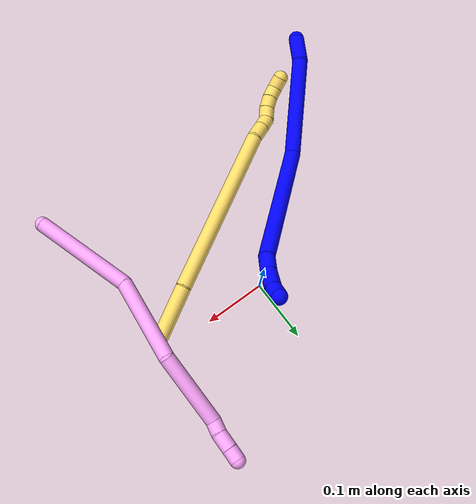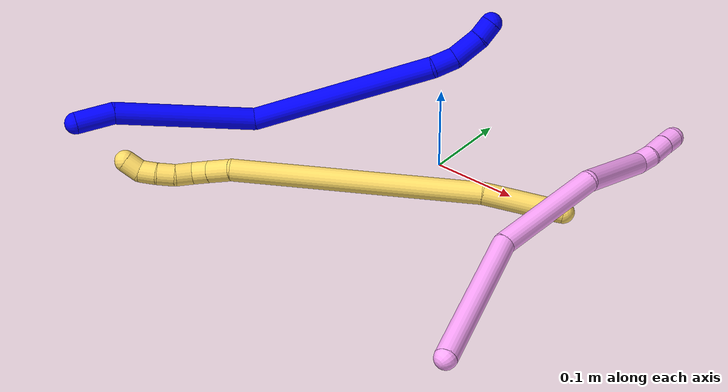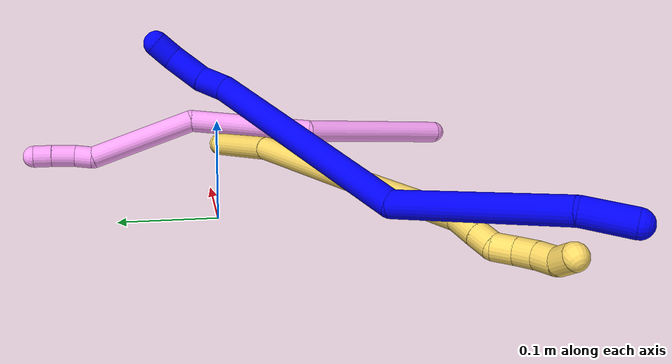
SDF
<sdf version="1.7">
 <world name="default">
  <model name="photoneo_s_sensor">
   <static>1</static>
   <pose>0 0 2 1.57079 1.57079 3.14159</pose>
   <link name="link">
    <inertial><mass>0.1</mass></inertial>
    <sensor name="sensor" type="depth">
     <update_rate>30</update_rate>
     <camera>
      <horizontal_fov>1.22</horizontal_fov>
      <image><width>1920</width><height>1200</height><format>B8G8R8</format></image>
      <clip><near>0.1</near><far>4</far></clip>
      <depth_camera><output>points</output></depth_camera>
     </camera>
     <plugin name="camera_plugin" filename="libgazebo_ros_depth_camera.so">
      <baseline>0.2</baseline>
      <alwaysOn>1</alwaysOn>
      <updateRate>0.0</updateRate>
      <cameraName>camera_ir</cameraName>
      <imageTopicName>/camera/color/image_raw</imageTopicName>
      <cameraInfoTopicName>/camera/color/camera_info</cameraInfoTopicName>
      <depthImageTopicName>/camera/depth/image_raw</depthImageTopicName>
      <depthImageCameraInfoTopicName>/camera/depth/camera_info</depthImageCameraInfoTopicName>
      <pointCloudTopicName>/camera/depth/points</pointCloudTopicName>
      <frameName>fr_optical</frameName>
      <pointCloudCutoff>0.1</pointCloudCutoff>
      <pointCloudCutoffMax>2.0</pointCloudCutoffMax>
      <distortionK1>0</distortionK1>
      <distortionK2>0</distortionK2>
      <distortionK3>0</distortionK3>
      <distortionT1>0</distortionT1>
      <distortionT2>0</distortionT2>
      <CxPrime>0</CxPrime>
      <Cx>0</Cx>
      <Cy>0</Cy>
      <focalLength>0</focalLength>
      <hackBaseline>0</hackBaseline>
     </plugin>
    </sensor>
   </link>
  </model>
  <model name="1">
   <static>0</static>
   <link name="1">
    <collision name="collision-cylinder-e_1_1_4">
     <pose>2e-05 0.000368 0.022012 -0.016731 0.000888 -7e-06</pose>
     <geometry><cylinder><radius>0.0125</radius><length>0.04403</length></cylinder></geometry>
     <surface>
      <friction><ode><mu>1.16</mu><mu2>1.16</mu2><slip1>0</slip1><slip2>0</slip2></ode></friction>
      <contact><ode><kp>1e+06</kp><kd>1</kd><max_vel>0</max_vel><min_depth>0.001</min_depth></ode></contact>
     </surface>
    </collision>
    <visual name="visual-cylinder-e_1_1_4">
     <pose>2e-05 0.000368 0.022012 -0.016731 0.000888 -7e-06</pose>
     <geometry><cylinder><radius>0.0125</radius><length>0.04403</length></cylinder></geometry>
     <material><ambient>0 0 1 1</ambient></material>
    </visual>
    <collision name="collision-cylinder-e_2_4_5">
     <pose>-0.023304 -0.002079 0.120374 0.036866 -0.296524 -0.005507</pose>
     <geometry><cylinder><radius>0.0125</radius><length>0.159778</length></cylinder></geometry>
     <surface>
      <friction><ode><mu>1.16</mu><mu2>1.16</mu2><slip1>0</slip1><slip2>0</slip2></ode></friction>
      <contact><ode><kp>1e+06</kp><kd>1</kd><max_vel>0</max_vel><min_depth>0.001</min_depth></ode></contact>
     </surface>
    </collision>
    <visual name="visual-cylinder-e_2_4_5">
     <pose>-0.023304 -0.002079 0.120374 0.036866 -0.296524 -0.005507</pose>
     <geometry><cylinder><radius>0.0125</radius><length>0.159778</length></cylinder></geometry>
     <material><ambient>0 0 1 1</ambient></material>
    </visual>
    <collision name="collision-cylinder-e_3_5_6">
     <pose>-0.054449 0.040064 0.293041 -0.43673 -0.07326 0.016264</pose>
     <geometry><cylinder><radius>0.0125</radius><length>0.213158</length></cylinder></geometry>
     <surface>
      <friction><ode><mu>1.16</mu><mu2>1.16</mu2><slip1>0</slip1><slip2>0</slip2></ode></friction>
      <contact><ode><kp>1e+06</kp><kd>1</kd><max_vel>0</max_vel><min_depth>0.001</min_depth></ode></contact>
     </surface>
    </collision>
    <visual name="visual-cylinder-e_3_5_6">
     <pose>-0.054449 0.040064 0.293041 -0.43673 -0.07326 0.016264</pose>
     <geometry><cylinder><radius>0.0125</radius><length>0.213158</length></cylinder></geometry>
     <material><ambient>0 0 1 1</ambient></material>
    </visual>
    <collision name="collision-cylinder-e_4_6_7">
     <pose>-0.060797 0.087384 0.402421 -0.178726 0.108998 -0.009776</pose>
     <geometry><cylinder><radius>0.0125</radius><length>0.02671</length></cylinder></geometry>
     <surface>
      <friction><ode><mu>1.16</mu><mu2>1.16</mu2><slip1>0</slip1><slip2>0</slip2></ode></friction>
      <contact><ode><kp>1e+06</kp><kd>1</kd><max_vel>0</max_vel><min_depth>0.001</min_depth></ode></contact>
     </surface>
    </collision>
    <visual name="visual-cylinder-e_4_6_7">
     <pose>-0.060797 0.087384 0.402421 -0.178726 0.108998 -0.009776</pose>
     <geometry><cylinder><radius>0.0125</radius><length>0.02671</length></cylinder></geometry>
     <material><ambient>0 0 1 1</ambient></material>
    </visual>
    <collision name="collision-cylinder-e_5_7_8">
     <pose>-0.053374 0.095472 0.430909 -0.355575 0.348083 -0.063163</pose>
     <geometry><cylinder><radius>0.0125</radius><length>0.035004</length></cylinder></geometry>
     <surface>
      <friction><ode><mu>1.16</mu><mu2>1.16</mu2><slip1>0</slip1><slip2>0</slip2></ode></friction>
      <contact><ode><kp>1e+06</kp><kd>1</kd><max_vel>0</max_vel><min_depth>0.001</min_depth></ode></contact>
     </surface>
    </collision>
    <visual name="visual-cylinder-e_5_7_8">
     <pose>-0.053374 0.095472 0.430909 -0.355575 0.348083 -0.063163</pose>
     <geometry><cylinder><radius>0.0125</radius><length>0.035004</length></cylinder></geometry>
     <material><ambient>0 0 1 1</ambient></material>
    </visual>
    <collision name="collision-cylinder-e_6_8_2">
     <pose>-0.041522 0.10431 0.454661 -0.357487 0.584504 -0.10861</pose>
     <geometry><cylinder><radius>0.0125</radius><length>0.021321</length></cylinder></geometry>
     <surface>
      <friction><ode><mu>1.16</mu><mu2>1.16</mu2><slip1>0</slip1><slip2>0</slip2></ode></friction>
      <contact><ode><kp>1e+06</kp><kd>1</kd><max_vel>0</max_vel><min_depth>0.001</min_depth></ode></contact>
     </surface>
    </collision>
    <visual name="visual-cylinder-e_6_8_2">
     <pose>-0.041522 0.10431 0.454661 -0.357487 0.584504 -0.10861</pose>
     <geometry><cylinder><radius>0.0125</radius><length>0.021321</length></cylinder></geometry>
     <material><ambient>0 0 1 1</ambient></material>
    </visual>
    <collision name="collision-sphere-2">
     <pose>-0.03564 0.107421 0.462989 0 -0 0</pose>
     <geometry><sphere><radius>0.0125</radius></sphere></geometry>
     <surface>
      <friction><ode><mu>1.16</mu><mu2>1.16</mu2><slip1>0</slip1><slip2>0</slip2></ode></friction>
      <contact><ode><kp>1e+06</kp><kd>1</kd><max_vel>0</max_vel><min_depth>0.001</min_depth></ode></contact>
     </surface>
    </collision>
    <visual name="visual-sphere-2">
     <pose>-0.03564 0.107421 0.462989 0 -0 0</pose>
     <geometry><sphere><radius>0.0125</radius></sphere></geometry>
     <material><ambient>0 0 1 1</ambient></material>
    </visual>
    <collision name="collision-sphere-4">
     <pose>3.9e-05 0.000737 0.044023 0 -0 0</pose>
     <geometry><sphere><radius>0.0125</radius></sphere></geometry>
     <surface>
      <friction><ode><mu>1.16</mu><mu2>1.16</mu2><slip1>0</slip1><slip2>0</slip2></ode></friction>
      <contact><ode><kp>1e+06</kp><kd>1</kd><max_vel>0</max_vel><min_depth>0.001</min_depth></ode></contact>
     </surface>
    </collision>
    <visual name="visual-sphere-4">
     <pose>3.9e-05 0.000737 0.044023 0 -0 0</pose>
     <geometry><sphere><radius>0.0125</radius></sphere></geometry>
     <material><ambient>0 0 1 1</ambient></material>
    </visual>
    <collision name="collision-sphere-1">
     <geometry><sphere><radius>0.0125</radius></sphere></geometry>
     <surface>
      <friction><ode><mu>1.16</mu><mu2>1.16</mu2><slip1>0</slip1><slip2>0</slip2></ode></friction>
      <contact><ode><kp>1e+06</kp><kd>1</kd><max_vel>0</max_vel><min_depth>0.001</min_depth></ode></contact>
     </surface>
    </collision>
    <visual name="visual-sphere-1">
     <geometry><sphere><radius>0.0125</radius></sphere></geometry>
     <material><ambient>0 0 1 1</ambient></material>
    </visual>
    <collision name="collision-sphere-8">
     <pose>-0.047404 0.101199 0.446332 0 -0 0</pose>
     <geometry><sphere><radius>0.0125</radius></sphere></geometry>
     <surface>
      <friction><ode><mu>1.16</mu><mu2>1.16</mu2><slip1>0</slip1><slip2>0</slip2></ode></friction>
      <contact><ode><kp>1e+06</kp><kd>1</kd><max_vel>0</max_vel><min_depth>0.001</min_depth></ode></contact>
     </surface>
    </collision>
    <visual name="visual-sphere-8">
     <pose>-0.047404 0.101199 0.446332 0 -0 0</pose>
     <geometry><sphere><radius>0.0125</radius></sphere></geometry>
     <material><ambient>0 0 1 1</ambient></material>
    </visual>
    <collision name="collision-sphere-5">
     <pose>-0.046648 -0.004895 0.196724 0 -0 0</pose>
     <geometry><sphere><radius>0.0125</radius></sphere></geometry>
     <surface>
      <friction><ode><mu>1.16</mu><mu2>1.16</mu2><slip1>0</slip1><slip2>0</slip2></ode></friction>
      <contact><ode><kp>1e+06</kp><kd>1</kd><max_vel>0</max_vel><min_depth>0.001</min_depth></ode></contact>
     </surface>
    </collision>
    <visual name="visual-sphere-5">
     <pose>-0.046648 -0.004895 0.196724 0 -0 0</pose>
     <geometry><sphere><radius>0.0125</radius></sphere></geometry>
     <material><ambient>0 0 1 1</ambient></material>
    </visual>
    <collision name="collision-sphere-6">
     <pose>-0.06225 0.085024 0.389357 0 -0 0</pose>
     <geometry><sphere><radius>0.0125</radius></sphere></geometry>
     <surface>
      <friction><ode><mu>1.16</mu><mu2>1.16</mu2><slip1>0</slip1><slip2>0</slip2></ode></friction>
      <contact><ode><kp>1e+06</kp><kd>1</kd><max_vel>0</max_vel><min_depth>0.001</min_depth></ode></contact>
     </surface>
    </collision>
    <visual name="visual-sphere-6">
     <pose>-0.06225 0.085024 0.389357 0 -0 0</pose>
     <geometry><sphere><radius>0.0125</radius></sphere></geometry>
     <material><ambient>0 0 1 1</ambient></material>
    </visual>
    <collision name="collision-sphere-7">
     <pose>-0.059344 0.089744 0.415486 0 -0 0</pose>
     <geometry><sphere><radius>0.0125</radius></sphere></geometry>
     <surface>
      <friction><ode><mu>1.16</mu><mu2>1.16</mu2><slip1>0</slip1><slip2>0</slip2></ode></friction>
      <contact><ode><kp>1e+06</kp><kd>1</kd><max_vel>0</max_vel><min_depth>0.001</min_depth></ode></contact>
     </surface>
    </collision>
    <visual name="visual-sphere-7">
     <pose>-0.059344 0.089744 0.415486 0 -0 0</pose>
     <geometry><sphere><radius>0.0125</radius></sphere></geometry>
     <material><ambient>0 0 1 1</ambient></material>
    </visual>
    <inertial>
     <pose>-0.039412 0.032248 0.236384 0 -0 0</pose>
     <mass>0.5</mass>
     <inertia>
      <ixx>0.00117</ixx>
      <ixy>0</ixy>
      <ixz>0</ixz>
      <iyy>0.001122</iyy>
      <iyz>0</iyz>
      <izz>-0.00014</izz>
     </inertia>
    </inertial>
   </link>
   <pose>-0.291661 -0.288515 0.08476 1.47413 -0.736259 2.67395</pose>
  </model>
  <model name="4">
   <static>0</static>
   <link name="4">
    <collision name="collision-cylinder-e_1_1_4">
     <pose>0.028218 -0.018775 -0.080373 2.91211 0.329421 1.92909</pose>
     <geometry><cylinder><radius>0.0125</radius><length>0.174455</length></cylinder></geometry>
     <surface>
      <friction><ode><mu>1.16</mu><mu2>1.16</mu2><slip1>0</slip1><slip2>0</slip2></ode></friction>
      <contact><ode><kp>1e+06</kp><kd>1</kd><max_vel>0</max_vel><min_depth>0.001</min_depth></ode></contact>
     </surface>
    </collision>
    <visual name="visual-cylinder-e_1_1_4">
     <pose>0.028218 -0.018775 -0.080373 2.91211 0.329421 1.92909</pose>
     <geometry><cylinder><radius>0.0125</radius><length>0.174455</length></cylinder></geometry>
     <material><ambient>1 0.65098 0.996078 1</ambient></material>
    </visual>
    <collision name="collision-cylinder-e_2_4_5">
     <pose>0.061019 -0.031966 -0.228855 -3.05979 0.066978 -1.37198</pose>
     <geometry><cylinder><radius>0.0125</radius><length>0.13698</length></cylinder></geometry>
     <surface>
      <friction><ode><mu>1.16</mu><mu2>1.16</mu2><slip1>0</slip1><slip2>0</slip2></ode></friction>
      <contact><ode><kp>1e+06</kp><kd>1</kd><max_vel>0</max_vel><min_depth>0.001</min_depth></ode></contact>
     </surface>
    </collision>
    <visual name="visual-cylinder-e_2_4_5">
     <pose>0.061019 -0.031966 -0.228855 -3.05979 0.066978 -1.37198</pose>
     <geometry><cylinder><radius>0.0125</radius><length>0.13698</length></cylinder></geometry>
     <material><ambient>1 0.65098 0.996078 1</ambient></material>
    </visual>
    <collision name="collision-cylinder-e_3_5_6">
     <pose>0.092492 -0.010187 -0.348415 -2.83666 0.462439 -1.98508</pose>
     <geometry><cylinder><radius>0.0125</radius><length>0.120542</length></cylinder></geometry>
     <surface>
      <friction><ode><mu>1.16</mu><mu2>1.16</mu2><slip1>0</slip1><slip2>0</slip2></ode></friction>
      <contact><ode><kp>1e+06</kp><kd>1</kd><max_vel>0</max_vel><min_depth>0.001</min_depth></ode></contact>
     </surface>
    </collision>
    <visual name="visual-cylinder-e_3_5_6">
     <pose>0.092492 -0.010187 -0.348415 -2.83666 0.462439 -1.98508</pose>
     <geometry><cylinder><radius>0.0125</radius><length>0.120542</length></cylinder></geometry>
     <material><ambient>1 0.65098 0.996078 1</ambient></material>
    </visual>
    <collision name="collision-cylinder-e_4_6_7">
     <pose>0.119486 0.007722 -0.410047 -2.97477 0.01013 -0.121021</pose>
     <geometry><cylinder><radius>0.0125</radius><length>0.020646</length></cylinder></geometry>
     <surface>
      <friction><ode><mu>1.16</mu><mu2>1.16</mu2><slip1>0</slip1><slip2>0</slip2></ode></friction>
      <contact><ode><kp>1e+06</kp><kd>1</kd><max_vel>0</max_vel><min_depth>0.001</min_depth></ode></contact>
     </surface>
    </collision>
    <visual name="visual-cylinder-e_4_6_7">
     <pose>0.119486 0.007722 -0.410047 -2.97477 0.01013 -0.121021</pose>
     <geometry><cylinder><radius>0.0125</radius><length>0.020646</length></cylinder></geometry>
     <material><ambient>1 0.65098 0.996078 1</ambient></material>
    </visual>
    <collision name="collision-cylinder-e_5_7_8">
     <pose>0.121999 0.010199 -0.433521 -3.08424 0.178971 -2.5227</pose>
     <geometry><cylinder><radius>0.0125</radius><length>0.027066</length></cylinder></geometry>
     <surface>
      <friction><ode><mu>1.16</mu><mu2>1.16</mu2><slip1>0</slip1><slip2>0</slip2></ode></friction>
      <contact><ode><kp>1e+06</kp><kd>1</kd><max_vel>0</max_vel><min_depth>0.001</min_depth></ode></contact>
     </surface>
    </collision>
    <visual name="visual-cylinder-e_5_7_8">
     <pose>0.121999 0.010199 -0.433521 -3.08424 0.178971 -2.5227</pose>
     <geometry><cylinder><radius>0.0125</radius><length>0.027066</length></cylinder></geometry>
     <material><ambient>1 0.65098 0.996078 1</ambient></material>
    </visual>
    <collision name="collision-cylinder-e_6_8_2">
     <pose>0.126473 0.011909 -0.456714 -3.04628 0.204728 -2.27226</pose>
     <geometry><cylinder><radius>0.0125</radius><length>0.020311</length></cylinder></geometry>
     <surface>
      <friction><ode><mu>1.16</mu><mu2>1.16</mu2><slip1>0</slip1><slip2>0</slip2></ode></friction>
      <contact><ode><kp>1e+06</kp><kd>1</kd><max_vel>0</max_vel><min_depth>0.001</min_depth></ode></contact>
     </surface>
    </collision>
    <visual name="visual-cylinder-e_6_8_2">
     <pose>0.126473 0.011909 -0.456714 -3.04628 0.204728 -2.27226</pose>
     <geometry><cylinder><radius>0.0125</radius><length>0.020311</length></cylinder></geometry>
     <material><ambient>1 0.65098 0.996078 1</ambient></material>
    </visual>
    <collision name="collision-sphere-2">
     <pose>0.128537 0.012855 -0.466612 0 -0 0</pose>
     <geometry><sphere><radius>0.0125</radius></sphere></geometry>
     <surface>
      <friction><ode><mu>1.16</mu><mu2>1.16</mu2><slip1>0</slip1><slip2>0</slip2></ode></friction>
      <contact><ode><kp>1e+06</kp><kd>1</kd><max_vel>0</max_vel><min_depth>0.001</min_depth></ode></contact>
     </surface>
    </collision>
    <visual name="visual-sphere-2">
     <pose>0.128537 0.012855 -0.466612 0 -0 0</pose>
     <geometry><sphere><radius>0.0125</radius></sphere></geometry>
     <material><ambient>1 0.65098 0.996078 1</ambient></material>
    </visual>
    <collision name="collision-sphere-4">
     <pose>0.056435 -0.03755 -0.160747 0 -0 0</pose>
     <geometry><sphere><radius>0.0125</radius></sphere></geometry>
     <surface>
      <friction><ode><mu>1.16</mu><mu2>1.16</mu2><slip1>0</slip1><slip2>0</slip2></ode></friction>
      <contact><ode><kp>1e+06</kp><kd>1</kd><max_vel>0</max_vel><min_depth>0.001</min_depth></ode></contact>
     </surface>
    </collision>
    <visual name="visual-sphere-4">
     <pose>0.056435 -0.03755 -0.160747 0 -0 0</pose>
     <geometry><sphere><radius>0.0125</radius></sphere></geometry>
     <material><ambient>1 0.65098 0.996078 1</ambient></material>
    </visual>
    <collision name="collision-sphere-1">
     <geometry><sphere><radius>0.0125</radius></sphere></geometry>
     <surface>
      <friction><ode><mu>1.16</mu><mu2>1.16</mu2><slip1>0</slip1><slip2>0</slip2></ode></friction>
      <contact><ode><kp>1e+06</kp><kd>1</kd><max_vel>0</max_vel><min_depth>0.001</min_depth></ode></contact>
     </surface>
    </collision>
    <visual name="visual-sphere-1">
     <geometry><sphere><radius>0.0125</radius></sphere></geometry>
     <material><ambient>1 0.65098 0.996078 1</ambient></material>
    </visual>
    <collision name="collision-sphere-8">
     <pose>0.124408 0.010963 -0.446815 0 -0 0</pose>
     <geometry><sphere><radius>0.0125</radius></sphere></geometry>
     <surface>
      <friction><ode><mu>1.16</mu><mu2>1.16</mu2><slip1>0</slip1><slip2>0</slip2></ode></friction>
      <contact><ode><kp>1e+06</kp><kd>1</kd><max_vel>0</max_vel><min_depth>0.001</min_depth></ode></contact>
     </surface>
    </collision>
    <visual name="visual-sphere-8">
     <pose>0.124408 0.010963 -0.446815 0 -0 0</pose>
     <geometry><sphere><radius>0.0125</radius></sphere></geometry>
     <material><ambient>1 0.65098 0.996078 1</ambient></material>
    </visual>
    <collision name="collision-sphere-5">
     <pose>0.065603 -0.026382 -0.296963 0 -0 0</pose>
     <geometry><sphere><radius>0.0125</radius></sphere></geometry>
     <surface>
      <friction><ode><mu>1.16</mu><mu2>1.16</mu2><slip1>0</slip1><slip2>0</slip2></ode></friction>
      <contact><ode><kp>1e+06</kp><kd>1</kd><max_vel>0</max_vel><min_depth>0.001</min_depth></ode></contact>
     </surface>
    </collision>
    <visual name="visual-sphere-5">
     <pose>0.065603 -0.026382 -0.296963 0 -0 0</pose>
     <geometry><sphere><radius>0.0125</radius></sphere></geometry>
     <material><ambient>1 0.65098 0.996078 1</ambient></material>
    </visual>
    <collision name="collision-sphere-6">
     <pose>0.119381 0.006008 -0.399867 0 -0 0</pose>
     <geometry><sphere><radius>0.0125</radius></sphere></geometry>
     <surface>
      <friction><ode><mu>1.16</mu><mu2>1.16</mu2><slip1>0</slip1><slip2>0</slip2></ode></friction>
      <contact><ode><kp>1e+06</kp><kd>1</kd><max_vel>0</max_vel><min_depth>0.001</min_depth></ode></contact>
     </surface>
    </collision>
    <visual name="visual-sphere-6">
     <pose>0.119381 0.006008 -0.399867 0 -0 0</pose>
     <geometry><sphere><radius>0.0125</radius></sphere></geometry>
     <material><ambient>1 0.65098 0.996078 1</ambient></material>
    </visual>
    <collision name="collision-sphere-7">
     <pose>0.11959 0.009436 -0.420226 0 -0 0</pose>
     <geometry><sphere><radius>0.0125</radius></sphere></geometry>
     <surface>
      <friction><ode><mu>1.16</mu><mu2>1.16</mu2><slip1>0</slip1><slip2>0</slip2></ode></friction>
      <contact><ode><kp>1e+06</kp><kd>1</kd><max_vel>0</max_vel><min_depth>0.001</min_depth></ode></contact>
     </surface>
    </collision>
    <visual name="visual-sphere-7">
     <pose>0.11959 0.009436 -0.420226 0 -0 0</pose>
     <geometry><sphere><radius>0.0125</radius></sphere></geometry>
     <material><ambient>1 0.65098 0.996078 1</ambient></material>
    </visual>
    <inertial>
     <pose>0.065536 -0.016409 -0.233689 0 -0 0</pose>
     <mass>0.5</mass>
     <inertia>
      <ixx>-9.5e-05</ixx>
      <ixy>0</ixy>
      <ixz>0</ixz>
      <iyy>0.000278</iyy>
      <iyz>0</iyz>
      <izz>-0.000227</izz>
     </inertia>
    </inertial>
   </link>
   <pose>0.226517 -0.286996 0.019975 -1.84779 0.751296 2.84711</pose>
  </model>
  <model name="5">
   <static>0</static>
   <link name="5">
    <collision name="collision-cylinder-e_1_1_4">
     <pose>-0.025615 -0.010739 0.035472 0.293977 -0.604757 -0.092305</pose>
     <geometry><cylinder><radius>0.0125</radius><length>0.090104</length></cylinder></geometry>
     <surface>
      <friction><ode><mu>1.16</mu><mu2>1.16</mu2><slip1>0</slip1><slip2>0</slip2></ode></friction>
      <contact><ode><kp>1e+06</kp><kd>1</kd><max_vel>0</max_vel><min_depth>0.001</min_depth></ode></contact>
     </surface>
    </collision>
    <visual name="visual-cylinder-e_1_1_4">
     <pose>-0.025615 -0.010739 0.035472 0.293977 -0.604757 -0.092305</pose>
     <geometry><cylinder><radius>0.0125</radius><length>0.090104</length></cylinder></geometry>
     <material><ambient>1 0.858824 0.4 1</ambient></material>
    </visual>
    <collision name="collision-cylinder-e_2_4_5">
     <pose>-0.121347 -0.036805 0.192366 0.125569 -0.520268 -0.033463</pose>
     <geometry><cylinder><radius>0.0125</radius><length>0.282098</length></cylinder></geometry>
     <surface>
      <friction><ode><mu>1.16</mu><mu2>1.16</mu2><slip1>0</slip1><slip2>0</slip2></ode></friction>
      <contact><ode><kp>1e+06</kp><kd>1</kd><max_vel>0</max_vel><min_depth>0.001</min_depth></ode></contact>
     </surface>
    </collision>
    <visual name="visual-cylinder-e_2_4_5">
     <pose>-0.121347 -0.036805 0.192366 0.125569 -0.520268 -0.033463</pose>
     <geometry><cylinder><radius>0.0125</radius><length>0.282098</length></cylinder></geometry>
     <material><ambient>1 0.858824 0.4 1</ambient></material>
    </visual>
    <collision name="collision-cylinder-e_3_5_6">
     <pose>-0.195156 -0.051593 0.326658 -0.041917 -0.279142 0.00589</pose>
     <geometry><cylinder><radius>0.0125</radius><length>0.026799</length></cylinder></geometry>
     <surface>
      <friction><ode><mu>1.16</mu><mu2>1.16</mu2><slip1>0</slip1><slip2>0</slip2></ode></friction>
      <contact><ode><kp>1e+06</kp><kd>1</kd><max_vel>0</max_vel><min_depth>0.001</min_depth></ode></contact>
     </surface>
    </collision>
    <visual name="visual-cylinder-e_3_5_6">
     <pose>-0.195156 -0.051593 0.326658 -0.041917 -0.279142 0.00589</pose>
     <geometry><cylinder><radius>0.0125</radius><length>0.026799</length></cylinder></geometry>
     <material><ambient>1 0.858824 0.4 1</ambient></material>
    </visual>
    <collision name="collision-cylinder-e_4_6_7">
     <pose>-0.201942 -0.050528 0.349151 -0.054553 -0.310595 0.008543</pose>
     <geometry><cylinder><radius>0.0125</radius><length>0.020243</length></cylinder></geometry>
     <surface>
      <friction><ode><mu>1.16</mu><mu2>1.16</mu2><slip1>0</slip1><slip2>0</slip2></ode></friction>
      <contact><ode><kp>1e+06</kp><kd>1</kd><max_vel>0</max_vel><min_depth>0.001</min_depth></ode></contact>
     </surface>
    </collision>
    <visual name="visual-cylinder-e_4_6_7">
     <pose>-0.201942 -0.050528 0.349151 -0.054553 -0.310595 0.008543</pose>
     <geometry><cylinder><radius>0.0125</radius><length>0.020243</length></cylinder></geometry>
     <material><ambient>1 0.858824 0.4 1</ambient></material>
    </visual>
    <collision name="collision-cylinder-e_5_7_8">
     <pose>-0.212569 -0.048807 0.365791 -0.168776 -0.813774 0.072872</pose>
     <geometry><cylinder><radius>0.0125</radius><length>0.02073</length></cylinder></geometry>
     <surface>
      <friction><ode><mu>1.16</mu><mu2>1.16</mu2><slip1>0</slip1><slip2>0</slip2></ode></friction>
      <contact><ode><kp>1e+06</kp><kd>1</kd><max_vel>0</max_vel><min_depth>0.001</min_depth></ode></contact>
     </surface>
    </collision>
    <visual name="visual-cylinder-e_5_7_8">
     <pose>-0.212569 -0.048807 0.365791 -0.168776 -0.813774 0.072872</pose>
     <geometry><cylinder><radius>0.0125</radius><length>0.02073</length></cylinder></geometry>
     <material><ambient>1 0.858824 0.4 1</ambient></material>
    </visual>
    <collision name="collision-cylinder-e_6_8_9">
     <pose>-0.226379 -0.04848 0.38056 0.11163 -0.677442 -0.039363</pose>
     <geometry><cylinder><radius>0.0125</radius><length>0.020023</length></cylinder></geometry>
     <surface>
      <friction><ode><mu>1.16</mu><mu2>1.16</mu2><slip1>0</slip1><slip2>0</slip2></ode></friction>
      <contact><ode><kp>1e+06</kp><kd>1</kd><max_vel>0</max_vel><min_depth>0.001</min_depth></ode></contact>
     </surface>
    </collision>
    <visual name="visual-cylinder-e_6_8_9">
     <pose>-0.226379 -0.04848 0.38056 0.11163 -0.677442 -0.039363</pose>
     <geometry><cylinder><radius>0.0125</radius><length>0.020023</length></cylinder></geometry>
     <material><ambient>1 0.858824 0.4 1</ambient></material>
    </visual>
    <collision name="collision-cylinder-e_7_9_10">
     <pose>-0.237724 -0.050971 0.396779 0.189279 -0.531646 -0.051677</pose>
     <geometry><cylinder><radius>0.0125</radius><length>0.020001</length></cylinder></geometry>
     <surface>
      <friction><ode><mu>1.16</mu><mu2>1.16</mu2><slip1>0</slip1><slip2>0</slip2></ode></friction>
      <contact><ode><kp>1e+06</kp><kd>1</kd><max_vel>0</max_vel><min_depth>0.001</min_depth></ode></contact>
     </surface>
    </collision>
    <visual name="visual-cylinder-e_7_9_10">
     <pose>-0.237724 -0.050971 0.396779 0.189279 -0.531646 -0.051677</pose>
     <geometry><cylinder><radius>0.0125</radius><length>0.020001</length></cylinder></geometry>
     <material><ambient>1 0.858824 0.4 1</ambient></material>
    </visual>
    <collision name="collision-cylinder-e_8_10_2">
     <pose>-0.248682 -0.058302 0.410968 0.784248 -0.629527 -0.267677</pose>
     <geometry><cylinder><radius>0.0125</radius><length>0.020001</length></cylinder></geometry>
     <surface>
      <friction><ode><mu>1.16</mu><mu2>1.16</mu2><slip1>0</slip1><slip2>0</slip2></ode></friction>
      <contact><ode><kp>1e+06</kp><kd>1</kd><max_vel>0</max_vel><min_depth>0.001</min_depth></ode></contact>
     </surface>
    </collision>
    <visual name="visual-cylinder-e_8_10_2">
     <pose>-0.248682 -0.058302 0.410968 0.784248 -0.629527 -0.267677</pose>
     <geometry><cylinder><radius>0.0125</radius><length>0.020001</length></cylinder></geometry>
     <material><ambient>1 0.858824 0.4 1</ambient></material>
    </visual>
    <collision name="collision-sphere-2">
     <pose>-0.25457 -0.064012 0.41669 0 -0 0</pose>
     <geometry><sphere><radius>0.0125</radius></sphere></geometry>
     <surface>
      <friction><ode><mu>1.16</mu><mu2>1.16</mu2><slip1>0</slip1><slip2>0</slip2></ode></friction>
      <contact><ode><kp>1e+06</kp><kd>1</kd><max_vel>0</max_vel><min_depth>0.001</min_depth></ode></contact>
     </surface>
    </collision>
    <visual name="visual-sphere-2">
     <pose>-0.25457 -0.064012 0.41669 0 -0 0</pose>
     <geometry><sphere><radius>0.0125</radius></sphere></geometry>
     <material><ambient>1 0.858824 0.4 1</ambient></material>
    </visual>
    <collision name="collision-sphere-10">
     <pose>-0.242794 -0.052593 0.405245 0 -0 0</pose>
     <geometry><sphere><radius>0.0125</radius></sphere></geometry>
     <surface>
      <friction><ode><mu>1.16</mu><mu2>1.16</mu2><slip1>0</slip1><slip2>0</slip2></ode></friction>
      <contact><ode><kp>1e+06</kp><kd>1</kd><max_vel>0</max_vel><min_depth>0.001</min_depth></ode></contact>
     </surface>
    </collision>
    <visual name="visual-sphere-10">
     <pose>-0.242794 -0.052593 0.405245 0 -0 0</pose>
     <geometry><sphere><radius>0.0125</radius></sphere></geometry>
     <material><ambient>1 0.858824 0.4 1</ambient></material>
    </visual>
    <collision name="collision-sphere-9">
     <pose>-0.232654 -0.049349 0.388312 0 -0 0</pose>
     <geometry><sphere><radius>0.0125</radius></sphere></geometry>
     <surface>
      <friction><ode><mu>1.16</mu><mu2>1.16</mu2><slip1>0</slip1><slip2>0</slip2></ode></friction>
      <contact><ode><kp>1e+06</kp><kd>1</kd><max_vel>0</max_vel><min_depth>0.001</min_depth></ode></contact>
     </surface>
    </collision>
    <visual name="visual-sphere-9">
     <pose>-0.232654 -0.049349 0.388312 0 -0 0</pose>
     <geometry><sphere><radius>0.0125</radius></sphere></geometry>
     <material><ambient>1 0.858824 0.4 1</ambient></material>
    </visual>
    <collision name="collision-sphere-4">
     <pose>-0.05123 -0.021478 0.070943 0 -0 0</pose>
     <geometry><sphere><radius>0.0125</radius></sphere></geometry>
     <surface>
      <friction><ode><mu>1.16</mu><mu2>1.16</mu2><slip1>0</slip1><slip2>0</slip2></ode></friction>
      <contact><ode><kp>1e+06</kp><kd>1</kd><max_vel>0</max_vel><min_depth>0.001</min_depth></ode></contact>
     </surface>
    </collision>
    <visual name="visual-sphere-4">
     <pose>-0.05123 -0.021478 0.070943 0 -0 0</pose>
     <geometry><sphere><radius>0.0125</radius></sphere></geometry>
     <material><ambient>1 0.858824 0.4 1</ambient></material>
    </visual>
    <collision name="collision-sphere-1">
     <geometry><sphere><radius>0.0125</radius></sphere></geometry>
     <surface>
      <friction><ode><mu>1.16</mu><mu2>1.16</mu2><slip1>0</slip1><slip2>0</slip2></ode></friction>
      <contact><ode><kp>1e+06</kp><kd>1</kd><max_vel>0</max_vel><min_depth>0.001</min_depth></ode></contact>
     </surface>
    </collision>
    <visual name="visual-sphere-1">
     <geometry><sphere><radius>0.0125</radius></sphere></geometry>
     <material><ambient>1 0.858824 0.4 1</ambient></material>
    </visual>
    <collision name="collision-sphere-8">
     <pose>-0.220103 -0.047611 0.372808 0 -0 0</pose>
     <geometry><sphere><radius>0.0125</radius></sphere></geometry>
     <surface>
      <friction><ode><mu>1.16</mu><mu2>1.16</mu2><slip1>0</slip1><slip2>0</slip2></ode></friction>
      <contact><ode><kp>1e+06</kp><kd>1</kd><max_vel>0</max_vel><min_depth>0.001</min_depth></ode></contact>
     </surface>
    </collision>
    <visual name="visual-sphere-8">
     <pose>-0.220103 -0.047611 0.372808 0 -0 0</pose>
     <geometry><sphere><radius>0.0125</radius></sphere></geometry>
     <material><ambient>1 0.858824 0.4 1</ambient></material>
    </visual>
    <collision name="collision-sphere-5">
     <pose>-0.191464 -0.052133 0.313788 0 -0 0</pose>
     <geometry><sphere><radius>0.0125</radius></sphere></geometry>
     <surface>
      <friction><ode><mu>1.16</mu><mu2>1.16</mu2><slip1>0</slip1><slip2>0</slip2></ode></friction>
      <contact><ode><kp>1e+06</kp><kd>1</kd><max_vel>0</max_vel><min_depth>0.001</min_depth></ode></contact>
     </surface>
    </collision>
    <visual name="visual-sphere-5">
     <pose>-0.191464 -0.052133 0.313788 0 -0 0</pose>
     <geometry><sphere><radius>0.0125</radius></sphere></geometry>
     <material><ambient>1 0.858824 0.4 1</ambient></material>
    </visual>
    <collision name="collision-sphere-6">
     <pose>-0.198848 -0.051053 0.339528 0 -0 0</pose>
     <geometry><sphere><radius>0.0125</radius></sphere></geometry>
     <surface>
      <friction><ode><mu>1.16</mu><mu2>1.16</mu2><slip1>0</slip1><slip2>0</slip2></ode></friction>
      <contact><ode><kp>1e+06</kp><kd>1</kd><max_vel>0</max_vel><min_depth>0.001</min_depth></ode></contact>
     </surface>
    </collision>
    <visual name="visual-sphere-6">
     <pose>-0.198848 -0.051053 0.339528 0 -0 0</pose>
     <geometry><sphere><radius>0.0125</radius></sphere></geometry>
     <material><ambient>1 0.858824 0.4 1</ambient></material>
    </visual>
    <collision name="collision-sphere-7">
     <pose>-0.205035 -0.050002 0.358773 0 -0 0</pose>
     <geometry><sphere><radius>0.0125</radius></sphere></geometry>
     <surface>
      <friction><ode><mu>1.16</mu><mu2>1.16</mu2><slip1>0</slip1><slip2>0</slip2></ode></friction>
      <contact><ode><kp>1e+06</kp><kd>1</kd><max_vel>0</max_vel><min_depth>0.001</min_depth></ode></contact>
     </surface>
    </collision>
    <visual name="visual-sphere-7">
     <pose>-0.205035 -0.050002 0.358773 0 -0 0</pose>
     <geometry><sphere><radius>0.0125</radius></sphere></geometry>
     <material><ambient>1 0.858824 0.4 1</ambient></material>
    </visual>
    <inertial>
     <pose>-0.129052 -0.035848 0.209286 0 -0 0</pose>
     <mass>0.5</mass>
     <inertia>
      <ixx>0.001614</ixx>
      <ixy>0</ixy>
      <ixz>0</ixz>
      <iyy>0.001877</iyy>
      <iyz>0</iyz>
      <izz>0.00123</izz>
     </inertia>
    </inertial>
   </link>
   <pose>0.183352 -0.018434 0.026182 -2.03435 0.520223 1.47354</pose>
  </model>
 </world>
</sdf>
